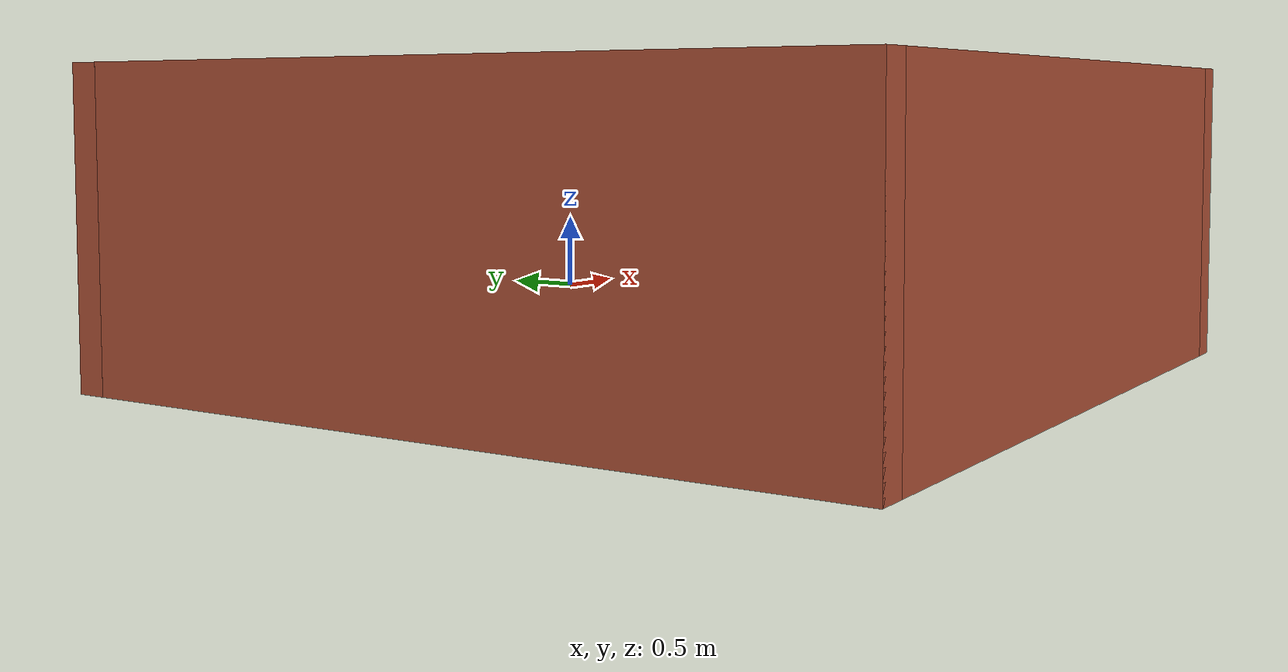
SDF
<?xml version='1.0'?>
<sdf version='1.7'>
  <model name='room'>
    <pose>-2.4425 -2.4125 0 0 -0 0</pose>
    <link name='Wall_10'>
      <collision name='Wall_10_Collision'>
        <geometry>
          <box>
            <size>4 0.15 1.5</size>
          </box>
        </geometry>
        <pose>0 0 0.75 0 -0 0</pose>
      </collision>
      <visual name='Wall_10_Visual'>
        <pose>0 0 0.75 0 -0 0</pose>
        <geometry>
          <box>
            <size>4 0.15 1.5</size>
          </box>
        </geometry>
        <material>
          <script>
            <uri>file://media/materials/scripts/gazebo.material</uri>
            <name>Gazebo/Bricks</name>
          </script>
          <ambient>0.435294 0.796078 0.67451 1</ambient>
        </material>
        <meta>
          <layer>0</layer>
        </meta>
      </visual>
      <pose>-0.4425 -2.3375 0 0 -0 0</pose>
    </link>
    <link name='Wall_11'>
      <collision name='Wall_11_Collision'>
        <geometry>
          <box>
            <size>4 0.15 1.5</size>
          </box>
        </geometry>
        <pose>0 0 0.75 0 -0 0</pose>
      </collision>
      <visual name='Wall_11_Visual'>
        <pose>0 0 0.75 0 -0 0</pose>
        <geometry>
          <box>
            <size>4 0.15 1.5</size>
          </box>
        </geometry>
        <material>
          <script>
            <uri>file://media/materials/scripts/gazebo.material</uri>
            <name>Gazebo/Bricks</name>
          </script>
          <ambient>0.435294 0.796078 0.67451 1</ambient>
        </material>
        <meta>
          <layer>0</layer>
        </meta>
      </visual>
      <pose>1.4825 -0.4125 0 0 -0 1.5708</pose>
    </link>
    <link name='Wall_12'>
      <collision name='Wall_12_Collision'>
        <geometry>
          <box>
            <size>4 0.15 1.5</size>
          </box>
        </geometry>
        <pose>0 0 0.75 0 -0 0</pose>
      </collision>
      <visual name='Wall_12_Visual'>
        <pose>0 0 0.75 0 -0 0</pose>
        <geometry>
          <box>
            <size>4 0.15 1.5</size>
          </box>
        </geometry>
        <material>
          <script>
            <uri>file://media/materials/scripts/gazebo.material</uri>
            <name>Gazebo/Bricks</name>
          </script>
          <ambient>0.435294 0.796078 0.67451 1</ambient>
        </material>
        <meta>
          <layer>0</layer>
        </meta>
      </visual>
      <pose>-0.4425 1.5125 0 0 -0 3.14159</pose>
    </link>
    <link name='Wall_9'>
      <collision name='Wall_9_Collision'>
        <geometry>
          <box>
            <size>4 0.15 1.5</size>
          </box>
        </geometry>
        <pose>0 0 0.75 0 -0 0</pose>
      </collision>
      <visual name='Wall_9_Visual'>
        <pose>0 0 0.75 0 -0 0</pose>
        <geometry>
          <box>
            <size>4 0.15 1.5</size>
          </box>
        </geometry>
        <material>
          <script>
            <uri>file://media/materials/scripts/gazebo.material</uri>
            <name>Gazebo/Bricks</name>
          </script>
          <ambient>0.435294 0.796078 0.67451 1</ambient>
        </material>
        <meta>
          <layer>0</layer>
        </meta>
      </visual>
      <pose>-2.3675 -0.4125 0 0 -0 -1.5708</pose>
    </link>
    <static>1</static>
  </model>
</sdf>
